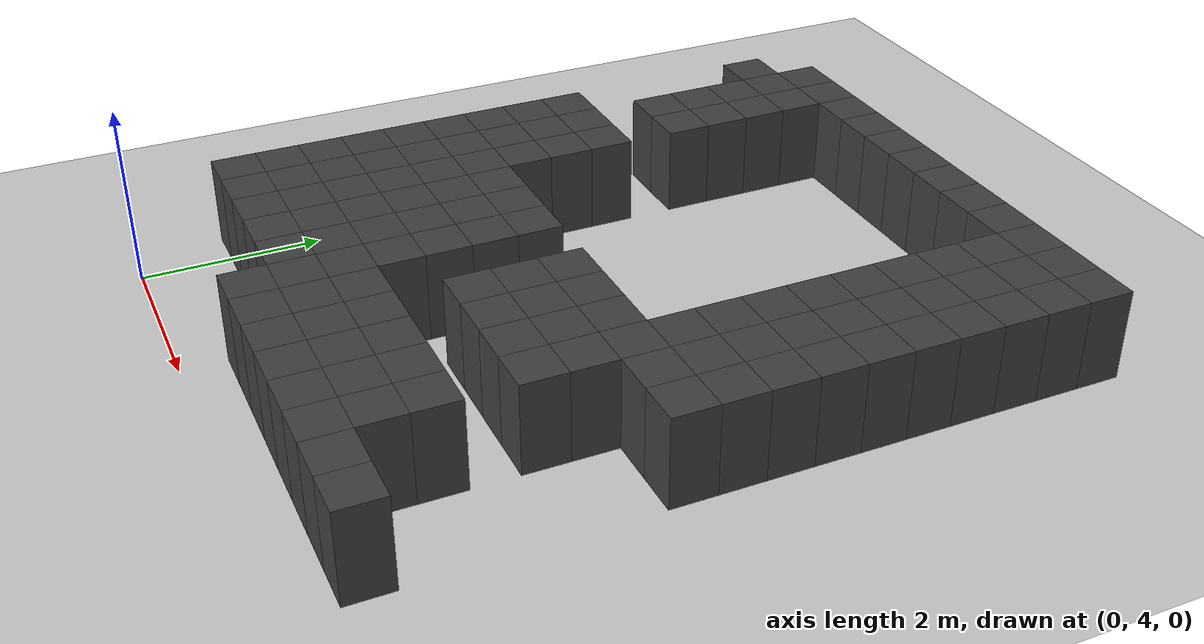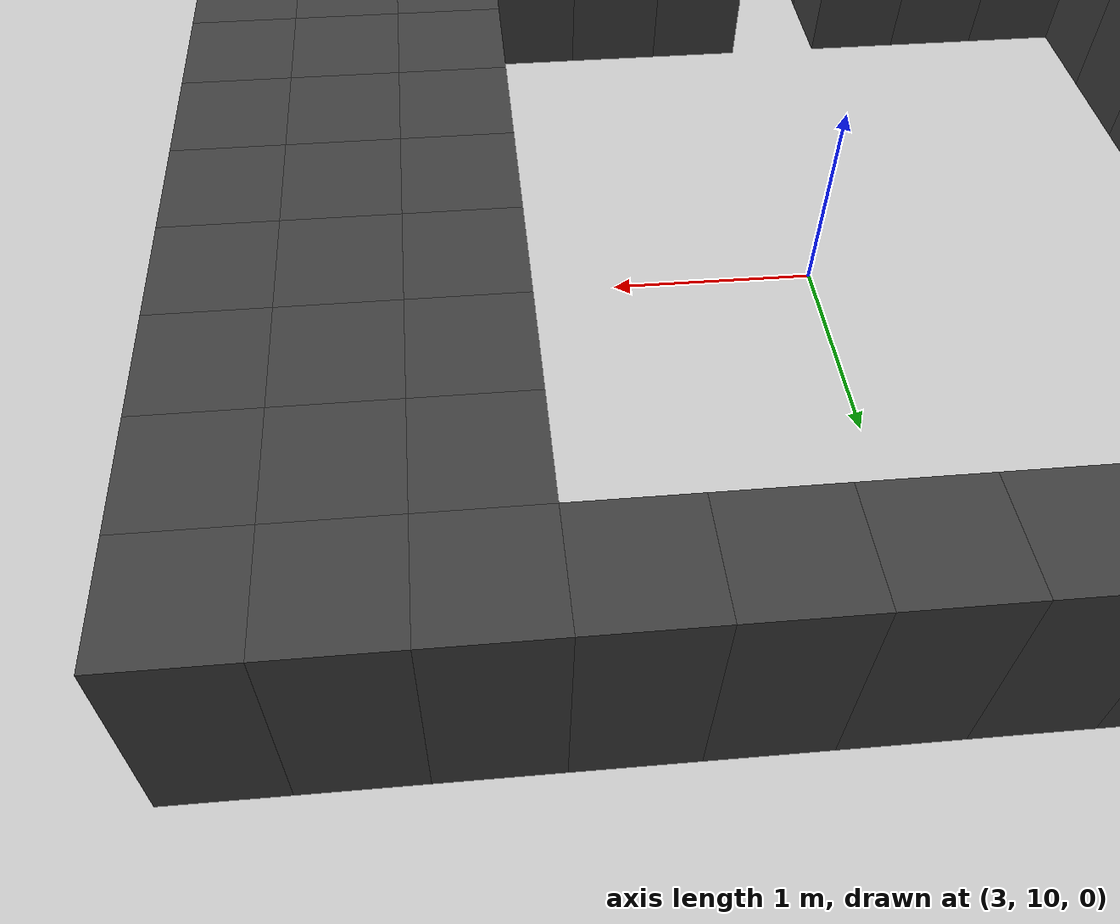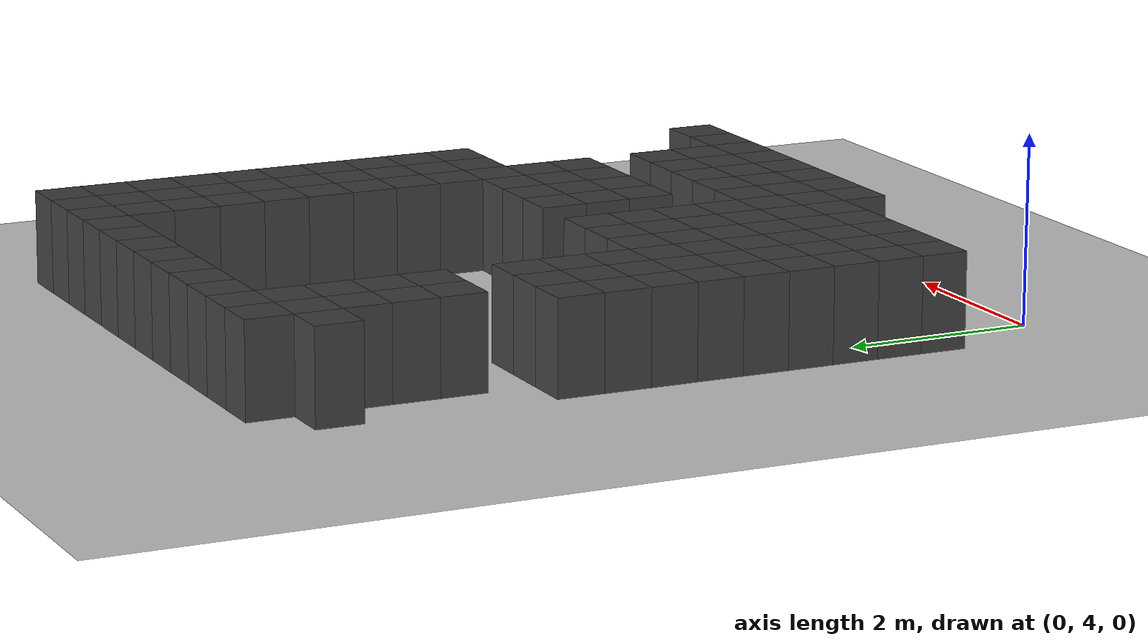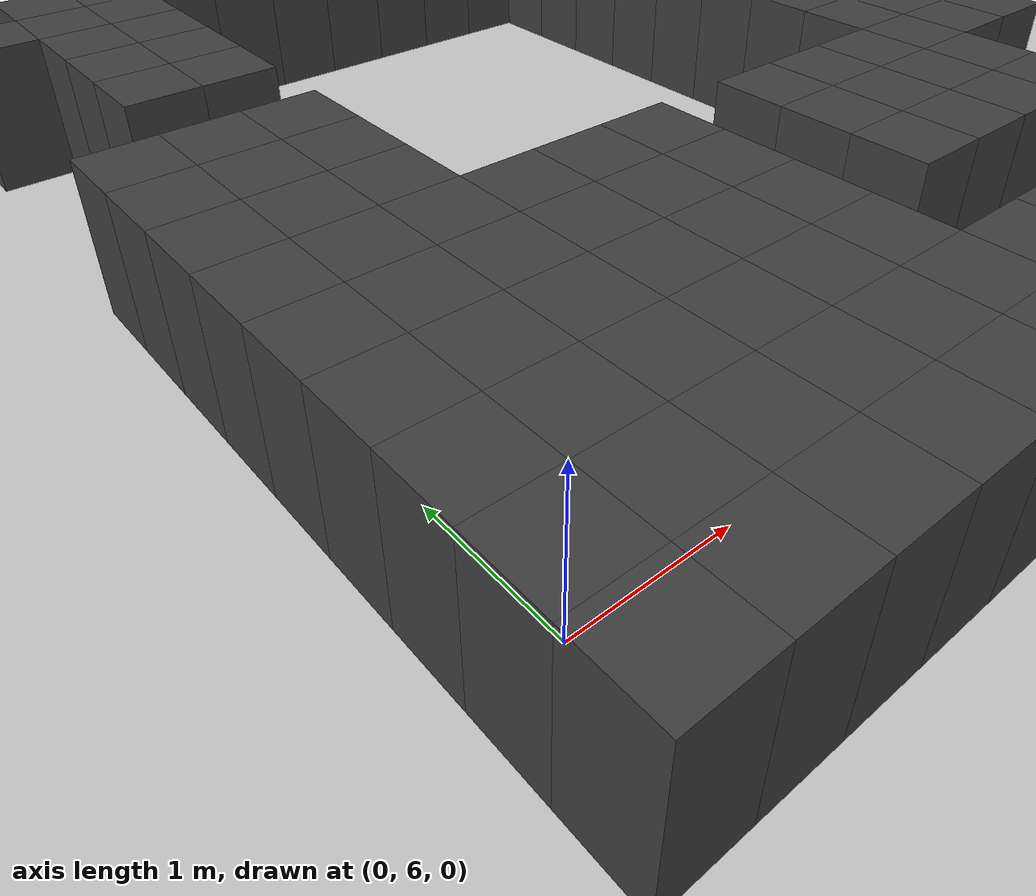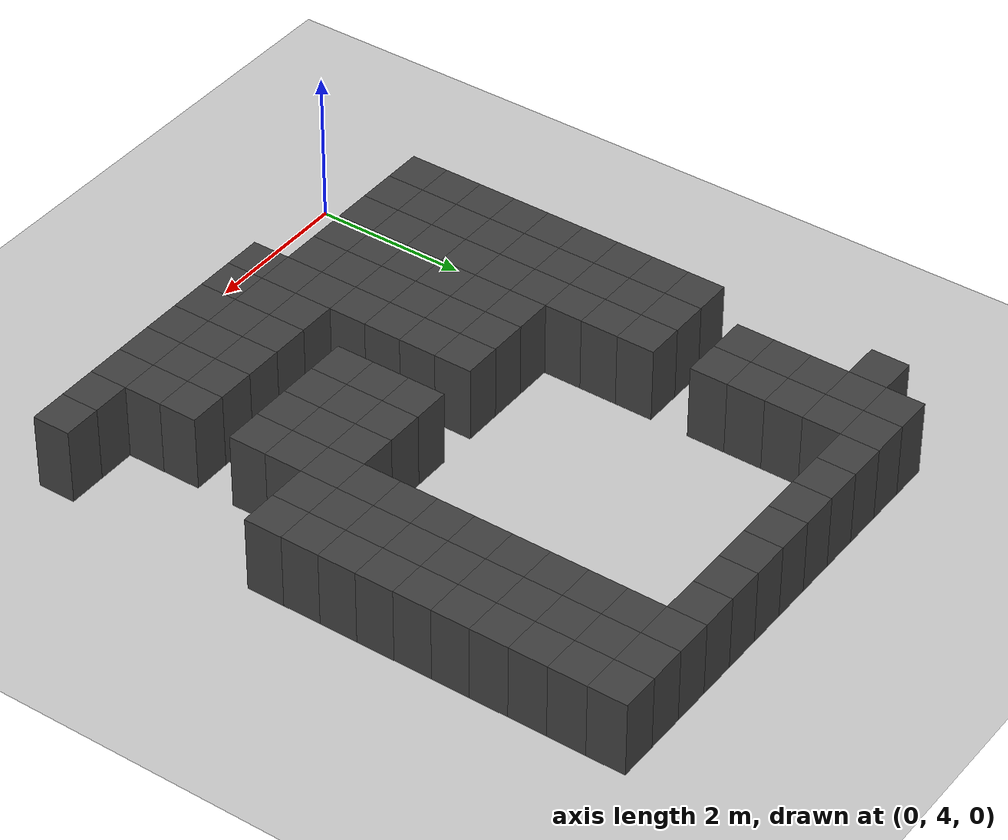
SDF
<sdf version="1.7">
 <world name="map_14547">
  <model name="ground_plane">
   <static>true</static>
   <link name="link">
    <collision name="collision">
     <geometry><plane><normal>0 0 1</normal><size>200 200</size></plane></geometry>
    </collision>
    <visual name="visual">
     <geometry><plane><normal>0 0 1</normal><size>200 200</size></plane></geometry>
     <material><ambient>0.8 0.8 0.8 1</ambient><diffuse>0.8 0.8 0.8 1</diffuse></material>
    </visual>
   </link>
  </model>
  <model name="maze_environment">
   <static>true</static>
   <link name="wall_25">
    <pose>0.250 12.250 0.500 0 0 0</pose>
    <collision name="col"><geometry><box><size>0.5 0.5 1.0</size></box></geometry></collision>
    <visual name="vis">
     <geometry><box><size>0.5 0.5 1.0</size></box></geometry>
     <material><ambient>0.15 0.15 0.15 1</ambient><diffuse>0.25 0.25 0.25 1</diffuse></material>
    </visual>
   </link>
   <link name="wall_26">
    <pose>0.750 12.250 0.500 0 0 0</pose>
    <collision name="col"><geometry><box><size>0.5 0.5 1.0</size></box></geometry></collision>
    <visual name="vis">
     <geometry><box><size>0.5 0.5 1.0</size></box></geometry>
     <material><ambient>0.15 0.15 0.15 1</ambient><diffuse>0.25 0.25 0.25 1</diffuse></material>
    </visual>
   </link>
   <link name="wall_27">
    <pose>1.250 12.250 0.500 0 0 0</pose>
    <collision name="col"><geometry><box><size>0.5 0.5 1.0</size></box></geometry></collision>
    <visual name="vis">
     <geometry><box><size>0.5 0.5 1.0</size></box></geometry>
     <material><ambient>0.15 0.15 0.15 1</ambient><diffuse>0.25 0.25 0.25 1</diffuse></material>
    </visual>
   </link>
   <link name="wall_28">
    <pose>1.750 12.250 0.500 0 0 0</pose>
    <collision name="col"><geometry><box><size>0.5 0.5 1.0</size></box></geometry></collision>
    <visual name="vis">
     <geometry><box><size>0.5 0.5 1.0</size></box></geometry>
     <material><ambient>0.15 0.15 0.15 1</ambient><diffuse>0.25 0.25 0.25 1</diffuse></material>
    </visual>
   </link>
   <link name="wall_29">
    <pose>2.250 12.250 0.500 0 0 0</pose>
    <collision name="col"><geometry><box><size>0.5 0.5 1.0</size></box></geometry></collision>
    <visual name="vis">
     <geometry><box><size>0.5 0.5 1.0</size></box></geometry>
     <material><ambient>0.15 0.15 0.15 1</ambient><diffuse>0.25 0.25 0.25 1</diffuse></material>
    </visual>
   </link>
   <link name="wall_30">
    <pose>2.750 12.250 0.500 0 0 0</pose>
    <collision name="col"><geometry><box><size>0.5 0.5 1.0</size></box></geometry></collision>
    <visual name="vis">
     <geometry><box><size>0.5 0.5 1.0</size></box></geometry>
     <material><ambient>0.15 0.15 0.15 1</ambient><diffuse>0.25 0.25 0.25 1</diffuse></material>
    </visual>
   </link>
   <link name="wall_31">
    <pose>3.250 12.250 0.500 0 0 0</pose>
    <collision name="col"><geometry><box><size>0.5 0.5 1.0</size></box></geometry></collision>
    <visual name="vis">
     <geometry><box><size>0.5 0.5 1.0</size></box></geometry>
     <material><ambient>0.15 0.15 0.15 1</ambient><diffuse>0.25 0.25 0.25 1</diffuse></material>
    </visual>
   </link>
   <link name="wall_32">
    <pose>3.750 12.250 0.500 0 0 0</pose>
    <collision name="col"><geometry><box><size>0.5 0.5 1.0</size></box></geometry></collision>
    <visual name="vis">
     <geometry><box><size>0.5 0.5 1.0</size></box></geometry>
     <material><ambient>0.15 0.15 0.15 1</ambient><diffuse>0.25 0.25 0.25 1</diffuse></material>
    </visual>
   </link>
   <link name="wall_33">
    <pose>4.250 12.250 0.500 0 0 0</pose>
    <collision name="col"><geometry><box><size>0.5 0.5 1.0</size></box></geometry></collision>
    <visual name="vis">
     <geometry><box><size>0.5 0.5 1.0</size></box></geometry>
     <material><ambient>0.15 0.15 0.15 1</ambient><diffuse>0.25 0.25 0.25 1</diffuse></material>
    </visual>
   </link>
   <link name="wall_34">
    <pose>4.750 12.250 0.500 0 0 0</pose>
    <collision name="col"><geometry><box><size>0.5 0.5 1.0</size></box></geometry></collision>
    <visual name="vis">
     <geometry><box><size>0.5 0.5 1.0</size></box></geometry>
     <material><ambient>0.15 0.15 0.15 1</ambient><diffuse>0.25 0.25 0.25 1</diffuse></material>
    </visual>
   </link>
   <link name="wall_35">
    <pose>5.250 12.250 0.500 0 0 0</pose>
    <collision name="col"><geometry><box><size>0.5 0.5 1.0</size></box></geometry></collision>
    <visual name="vis">
     <geometry><box><size>0.5 0.5 1.0</size></box></geometry>
     <material><ambient>0.15 0.15 0.15 1</ambient><diffuse>0.25 0.25 0.25 1</diffuse></material>
    </visual>
   </link>
   <link name="wall_36">
    <pose>5.750 12.250 0.500 0 0 0</pose>
    <collision name="col"><geometry><box><size>0.5 0.5 1.0</size></box></geometry></collision>
    <visual name="vis">
     <geometry><box><size>0.5 0.5 1.0</size></box></geometry>
     <material><ambient>0.15 0.15 0.15 1</ambient><diffuse>0.25 0.25 0.25 1</diffuse></material>
    </visual>
   </link>
   <link name="wall_71">
    <pose>-0.250 11.750 0.500 0 0 0</pose>
    <collision name="col"><geometry><box><size>0.5 0.5 1.0</size></box></geometry></collision>
    <visual name="vis">
     <geometry><box><size>0.5 0.5 1.0</size></box></geometry>
     <material><ambient>0.15 0.15 0.15 1</ambient><diffuse>0.25 0.25 0.25 1</diffuse></material>
    </visual>
   </link>
   <link name="wall_72">
    <pose>0.250 11.750 0.500 0 0 0</pose>
    <collision name="col"><geometry><box><size>0.5 0.5 1.0</size></box></geometry></collision>
    <visual name="vis">
     <geometry><box><size>0.5 0.5 1.0</size></box></geometry>
     <material><ambient>0.15 0.15 0.15 1</ambient><diffuse>0.25 0.25 0.25 1</diffuse></material>
    </visual>
   </link>
   <link name="wall_73">
    <pose>0.750 11.750 0.500 0 0 0</pose>
    <collision name="col"><geometry><box><size>0.5 0.5 1.0</size></box></geometry></collision>
    <visual name="vis">
     <geometry><box><size>0.5 0.5 1.0</size></box></geometry>
     <material><ambient>0.15 0.15 0.15 1</ambient><diffuse>0.25 0.25 0.25 1</diffuse></material>
    </visual>
   </link>
   <link name="wall_74">
    <pose>4.750 11.750 0.500 0 0 0</pose>
    <collision name="col"><geometry><box><size>0.5 0.5 1.0</size></box></geometry></collision>
    <visual name="vis">
     <geometry><box><size>0.5 0.5 1.0</size></box></geometry>
     <material><ambient>0.15 0.15 0.15 1</ambient><diffuse>0.25 0.25 0.25 1</diffuse></material>
    </visual>
   </link>
   <link name="wall_75">
    <pose>5.250 11.750 0.500 0 0 0</pose>
    <collision name="col"><geometry><box><size>0.5 0.5 1.0</size></box></geometry></collision>
    <visual name="vis">
     <geometry><box><size>0.5 0.5 1.0</size></box></geometry>
     <material><ambient>0.15 0.15 0.15 1</ambient><diffuse>0.25 0.25 0.25 1</diffuse></material>
    </visual>
   </link>
   <link name="wall_76">
    <pose>5.750 11.750 0.500 0 0 0</pose>
    <collision name="col"><geometry><box><size>0.5 0.5 1.0</size></box></geometry></collision>
    <visual name="vis">
     <geometry><box><size>0.5 0.5 1.0</size></box></geometry>
     <material><ambient>0.15 0.15 0.15 1</ambient><diffuse>0.25 0.25 0.25 1</diffuse></material>
    </visual>
   </link>
   <link name="wall_104">
    <pose>0.250 11.250 0.500 0 0 0</pose>
    <collision name="col"><geometry><box><size>0.5 0.5 1.0</size></box></geometry></collision>
    <visual name="vis">
     <geometry><box><size>0.5 0.5 1.0</size></box></geometry>
     <material><ambient>0.15 0.15 0.15 1</ambient><diffuse>0.25 0.25 0.25 1</diffuse></material>
    </visual>
   </link>
   <link name="wall_105">
    <pose>0.750 11.250 0.500 0 0 0</pose>
    <collision name="col"><geometry><box><size>0.5 0.5 1.0</size></box></geometry></collision>
    <visual name="vis">
     <geometry><box><size>0.5 0.5 1.0</size></box></geometry>
     <material><ambient>0.15 0.15 0.15 1</ambient><diffuse>0.25 0.25 0.25 1</diffuse></material>
    </visual>
   </link>
   <link name="wall_106">
    <pose>4.750 11.250 0.500 0 0 0</pose>
    <collision name="col"><geometry><box><size>0.5 0.5 1.0</size></box></geometry></collision>
    <visual name="vis">
     <geometry><box><size>0.5 0.5 1.0</size></box></geometry>
     <material><ambient>0.15 0.15 0.15 1</ambient><diffuse>0.25 0.25 0.25 1</diffuse></material>
    </visual>
   </link>
   <link name="wall_107">
    <pose>5.250 11.250 0.500 0 0 0</pose>
    <collision name="col"><geometry><box><size>0.5 0.5 1.0</size></box></geometry></collision>
    <visual name="vis">
     <geometry><box><size>0.5 0.5 1.0</size></box></geometry>
     <material><ambient>0.15 0.15 0.15 1</ambient><diffuse>0.25 0.25 0.25 1</diffuse></material>
    </visual>
   </link>
   <link name="wall_108">
    <pose>5.750 11.250 0.500 0 0 0</pose>
    <collision name="col"><geometry><box><size>0.5 0.5 1.0</size></box></geometry></collision>
    <visual name="vis">
     <geometry><box><size>0.5 0.5 1.0</size></box></geometry>
     <material><ambient>0.15 0.15 0.15 1</ambient><diffuse>0.25 0.25 0.25 1</diffuse></material>
    </visual>
   </link>
   <link name="wall_136">
    <pose>0.250 10.750 0.500 0 0 0</pose>
    <collision name="col"><geometry><box><size>0.5 0.5 1.0</size></box></geometry></collision>
    <visual name="vis">
     <geometry><box><size>0.5 0.5 1.0</size></box></geometry>
     <material><ambient>0.15 0.15 0.15 1</ambient><diffuse>0.25 0.25 0.25 1</diffuse></material>
    </visual>
   </link>
   <link name="wall_137">
    <pose>0.750 10.750 0.500 0 0 0</pose>
    <collision name="col"><geometry><box><size>0.5 0.5 1.0</size></box></geometry></collision>
    <visual name="vis">
     <geometry><box><size>0.5 0.5 1.0</size></box></geometry>
     <material><ambient>0.15 0.15 0.15 1</ambient><diffuse>0.25 0.25 0.25 1</diffuse></material>
    </visual>
   </link>
   <link name="wall_138">
    <pose>4.750 10.750 0.500 0 0 0</pose>
    <collision name="col"><geometry><box><size>0.5 0.5 1.0</size></box></geometry></collision>
    <visual name="vis">
     <geometry><box><size>0.5 0.5 1.0</size></box></geometry>
     <material><ambient>0.15 0.15 0.15 1</ambient><diffuse>0.25 0.25 0.25 1</diffuse></material>
    </visual>
   </link>
   <link name="wall_139">
    <pose>5.250 10.750 0.500 0 0 0</pose>
    <collision name="col"><geometry><box><size>0.5 0.5 1.0</size></box></geometry></collision>
    <visual name="vis">
     <geometry><box><size>0.5 0.5 1.0</size></box></geometry>
     <material><ambient>0.15 0.15 0.15 1</ambient><diffuse>0.25 0.25 0.25 1</diffuse></material>
    </visual>
   </link>
   <link name="wall_140">
    <pose>5.750 10.750 0.500 0 0 0</pose>
    <collision name="col"><geometry><box><size>0.5 0.5 1.0</size></box></geometry></collision>
    <visual name="vis">
     <geometry><box><size>0.5 0.5 1.0</size></box></geometry>
     <material><ambient>0.15 0.15 0.15 1</ambient><diffuse>0.25 0.25 0.25 1</diffuse></material>
    </visual>
   </link>
   <link name="wall_165">
    <pose>0.250 10.250 0.500 0 0 0</pose>
    <collision name="col"><geometry><box><size>0.5 0.5 1.0</size></box></geometry></collision>
    <visual name="vis">
     <geometry><box><size>0.5 0.5 1.0</size></box></geometry>
     <material><ambient>0.15 0.15 0.15 1</ambient><diffuse>0.25 0.25 0.25 1</diffuse></material>
    </visual>
   </link>
   <link name="wall_166">
    <pose>0.750 10.250 0.500 0 0 0</pose>
    <collision name="col"><geometry><box><size>0.5 0.5 1.0</size></box></geometry></collision>
    <visual name="vis">
     <geometry><box><size>0.5 0.5 1.0</size></box></geometry>
     <material><ambient>0.15 0.15 0.15 1</ambient><diffuse>0.25 0.25 0.25 1</diffuse></material>
    </visual>
   </link>
   <link name="wall_167">
    <pose>4.750 10.250 0.500 0 0 0</pose>
    <collision name="col"><geometry><box><size>0.5 0.5 1.0</size></box></geometry></collision>
    <visual name="vis">
     <geometry><box><size>0.5 0.5 1.0</size></box></geometry>
     <material><ambient>0.15 0.15 0.15 1</ambient><diffuse>0.25 0.25 0.25 1</diffuse></material>
    </visual>
   </link>
   <link name="wall_168">
    <pose>5.250 10.250 0.500 0 0 0</pose>
    <collision name="col"><geometry><box><size>0.5 0.5 1.0</size></box></geometry></collision>
    <visual name="vis">
     <geometry><box><size>0.5 0.5 1.0</size></box></geometry>
     <material><ambient>0.15 0.15 0.15 1</ambient><diffuse>0.25 0.25 0.25 1</diffuse></material>
    </visual>
   </link>
   <link name="wall_169">
    <pose>5.750 10.250 0.500 0 0 0</pose>
    <collision name="col"><geometry><box><size>0.5 0.5 1.0</size></box></geometry></collision>
    <visual name="vis">
     <geometry><box><size>0.5 0.5 1.0</size></box></geometry>
     <material><ambient>0.15 0.15 0.15 1</ambient><diffuse>0.25 0.25 0.25 1</diffuse></material>
    </visual>
   </link>
   <link name="wall_196">
    <pose>4.750 9.750 0.500 0 0 0</pose>
    <collision name="col"><geometry><box><size>0.5 0.5 1.0</size></box></geometry></collision>
    <visual name="vis">
     <geometry><box><size>0.5 0.5 1.0</size></box></geometry>
     <material><ambient>0.15 0.15 0.15 1</ambient><diffuse>0.25 0.25 0.25 1</diffuse></material>
    </visual>
   </link>
   <link name="wall_197">
    <pose>5.250 9.750 0.500 0 0 0</pose>
    <collision name="col"><geometry><box><size>0.5 0.5 1.0</size></box></geometry></collision>
    <visual name="vis">
     <geometry><box><size>0.5 0.5 1.0</size></box></geometry>
     <material><ambient>0.15 0.15 0.15 1</ambient><diffuse>0.25 0.25 0.25 1</diffuse></material>
    </visual>
   </link>
   <link name="wall_198">
    <pose>5.750 9.750 0.500 0 0 0</pose>
    <collision name="col"><geometry><box><size>0.5 0.5 1.0</size></box></geometry></collision>
    <visual name="vis">
     <geometry><box><size>0.5 0.5 1.0</size></box></geometry>
     <material><ambient>0.15 0.15 0.15 1</ambient><diffuse>0.25 0.25 0.25 1</diffuse></material>
    </visual>
   </link>
   <link name="wall_229">
    <pose>-0.250 9.250 0.500 0 0 0</pose>
    <collision name="col"><geometry><box><size>0.5 0.5 1.0</size></box></geometry></collision>
    <visual name="vis">
     <geometry><box><size>0.5 0.5 1.0</size></box></geometry>
     <material><ambient>0.15 0.15 0.15 1</ambient><diffuse>0.25 0.25 0.25 1</diffuse></material>
    </visual>
   </link>
   <link name="wall_230">
    <pose>0.250 9.250 0.500 0 0 0</pose>
    <collision name="col"><geometry><box><size>0.5 0.5 1.0</size></box></geometry></collision>
    <visual name="vis">
     <geometry><box><size>0.5 0.5 1.0</size></box></geometry>
     <material><ambient>0.15 0.15 0.15 1</ambient><diffuse>0.25 0.25 0.25 1</diffuse></material>
    </visual>
   </link>
   <link name="wall_231">
    <pose>0.750 9.250 0.500 0 0 0</pose>
    <collision name="col"><geometry><box><size>0.5 0.5 1.0</size></box></geometry></collision>
    <visual name="vis">
     <geometry><box><size>0.5 0.5 1.0</size></box></geometry>
     <material><ambient>0.15 0.15 0.15 1</ambient><diffuse>0.25 0.25 0.25 1</diffuse></material>
    </visual>
   </link>
   <link name="wall_232">
    <pose>4.750 9.250 0.500 0 0 0</pose>
    <collision name="col"><geometry><box><size>0.5 0.5 1.0</size></box></geometry></collision>
    <visual name="vis">
     <geometry><box><size>0.5 0.5 1.0</size></box></geometry>
     <material><ambient>0.15 0.15 0.15 1</ambient><diffuse>0.25 0.25 0.25 1</diffuse></material>
    </visual>
   </link>
   <link name="wall_233">
    <pose>5.250 9.250 0.500 0 0 0</pose>
    <collision name="col"><geometry><box><size>0.5 0.5 1.0</size></box></geometry></collision>
    <visual name="vis">
     <geometry><box><size>0.5 0.5 1.0</size></box></geometry>
     <material><ambient>0.15 0.15 0.15 1</ambient><diffuse>0.25 0.25 0.25 1</diffuse></material>
    </visual>
   </link>
   <link name="wall_234">
    <pose>5.750 9.250 0.500 0 0 0</pose>
    <collision name="col"><geometry><box><size>0.5 0.5 1.0</size></box></geometry></collision>
    <visual name="vis">
     <geometry><box><size>0.5 0.5 1.0</size></box></geometry>
     <material><ambient>0.15 0.15 0.15 1</ambient><diffuse>0.25 0.25 0.25 1</diffuse></material>
    </visual>
   </link>
   <link name="wall_259">
    <pose>-0.250 8.750 0.500 0 0 0</pose>
    <collision name="col"><geometry><box><size>0.5 0.5 1.0</size></box></geometry></collision>
    <visual name="vis">
     <geometry><box><size>0.5 0.5 1.0</size></box></geometry>
     <material><ambient>0.15 0.15 0.15 1</ambient><diffuse>0.25 0.25 0.25 1</diffuse></material>
    </visual>
   </link>
   <link name="wall_260">
    <pose>0.250 8.750 0.500 0 0 0</pose>
    <collision name="col"><geometry><box><size>0.5 0.5 1.0</size></box></geometry></collision>
    <visual name="vis">
     <geometry><box><size>0.5 0.5 1.0</size></box></geometry>
     <material><ambient>0.15 0.15 0.15 1</ambient><diffuse>0.25 0.25 0.25 1</diffuse></material>
    </visual>
   </link>
   <link name="wall_261">
    <pose>0.750 8.750 0.500 0 0 0</pose>
    <collision name="col"><geometry><box><size>0.5 0.5 1.0</size></box></geometry></collision>
    <visual name="vis">
     <geometry><box><size>0.5 0.5 1.0</size></box></geometry>
     <material><ambient>0.15 0.15 0.15 1</ambient><diffuse>0.25 0.25 0.25 1</diffuse></material>
    </visual>
   </link>
   <link name="wall_262">
    <pose>4.750 8.750 0.500 0 0 0</pose>
    <collision name="col"><geometry><box><size>0.5 0.5 1.0</size></box></geometry></collision>
    <visual name="vis">
     <geometry><box><size>0.5 0.5 1.0</size></box></geometry>
     <material><ambient>0.15 0.15 0.15 1</ambient><diffuse>0.25 0.25 0.25 1</diffuse></material>
    </visual>
   </link>
   <link name="wall_263">
    <pose>5.250 8.750 0.500 0 0 0</pose>
    <collision name="col"><geometry><box><size>0.5 0.5 1.0</size></box></geometry></collision>
    <visual name="vis">
     <geometry><box><size>0.5 0.5 1.0</size></box></geometry>
     <material><ambient>0.15 0.15 0.15 1</ambient><diffuse>0.25 0.25 0.25 1</diffuse></material>
    </visual>
   </link>
   <link name="wall_264">
    <pose>5.750 8.750 0.500 0 0 0</pose>
    <collision name="col"><geometry><box><size>0.5 0.5 1.0</size></box></geometry></collision>
    <visual name="vis">
     <geometry><box><size>0.5 0.5 1.0</size></box></geometry>
     <material><ambient>0.15 0.15 0.15 1</ambient><diffuse>0.25 0.25 0.25 1</diffuse></material>
    </visual>
   </link>
   <link name="wall_281">
    <pose>-0.250 8.250 0.500 0 0 0</pose>
    <collision name="col"><geometry><box><size>0.5 0.5 1.0</size></box></geometry></collision>
    <visual name="vis">
     <geometry><box><size>0.5 0.5 1.0</size></box></geometry>
     <material><ambient>0.15 0.15 0.15 1</ambient><diffuse>0.25 0.25 0.25 1</diffuse></material>
    </visual>
   </link>
   <link name="wall_282">
    <pose>0.250 8.250 0.500 0 0 0</pose>
    <collision name="col"><geometry><box><size>0.5 0.5 1.0</size></box></geometry></collision>
    <visual name="vis">
     <geometry><box><size>0.5 0.5 1.0</size></box></geometry>
     <material><ambient>0.15 0.15 0.15 1</ambient><diffuse>0.25 0.25 0.25 1</diffuse></material>
    </visual>
   </link>
   <link name="wall_283">
    <pose>0.750 8.250 0.500 0 0 0</pose>
    <collision name="col"><geometry><box><size>0.5 0.5 1.0</size></box></geometry></collision>
    <visual name="vis">
     <geometry><box><size>0.5 0.5 1.0</size></box></geometry>
     <material><ambient>0.15 0.15 0.15 1</ambient><diffuse>0.25 0.25 0.25 1</diffuse></material>
    </visual>
   </link>
   <link name="wall_284">
    <pose>4.750 8.250 0.500 0 0 0</pose>
    <collision name="col"><geometry><box><size>0.5 0.5 1.0</size></box></geometry></collision>
    <visual name="vis">
     <geometry><box><size>0.5 0.5 1.0</size></box></geometry>
     <material><ambient>0.15 0.15 0.15 1</ambient><diffuse>0.25 0.25 0.25 1</diffuse></material>
    </visual>
   </link>
   <link name="wall_285">
    <pose>5.250 8.250 0.500 0 0 0</pose>
    <collision name="col"><geometry><box><size>0.5 0.5 1.0</size></box></geometry></collision>
    <visual name="vis">
     <geometry><box><size>0.5 0.5 1.0</size></box></geometry>
     <material><ambient>0.15 0.15 0.15 1</ambient><diffuse>0.25 0.25 0.25 1</diffuse></material>
    </visual>
   </link>
   <link name="wall_286">
    <pose>5.750 8.250 0.500 0 0 0</pose>
    <collision name="col"><geometry><box><size>0.5 0.5 1.0</size></box></geometry></collision>
    <visual name="vis">
     <geometry><box><size>0.5 0.5 1.0</size></box></geometry>
     <material><ambient>0.15 0.15 0.15 1</ambient><diffuse>0.25 0.25 0.25 1</diffuse></material>
    </visual>
   </link>
   <link name="wall_300">
    <pose>-0.250 7.750 0.500 0 0 0</pose>
    <collision name="col"><geometry><box><size>0.5 0.5 1.0</size></box></geometry></collision>
    <visual name="vis">
     <geometry><box><size>0.5 0.5 1.0</size></box></geometry>
     <material><ambient>0.15 0.15 0.15 1</ambient><diffuse>0.25 0.25 0.25 1</diffuse></material>
    </visual>
   </link>
   <link name="wall_301">
    <pose>0.250 7.750 0.500 0 0 0</pose>
    <collision name="col"><geometry><box><size>0.5 0.5 1.0</size></box></geometry></collision>
    <visual name="vis">
     <geometry><box><size>0.5 0.5 1.0</size></box></geometry>
     <material><ambient>0.15 0.15 0.15 1</ambient><diffuse>0.25 0.25 0.25 1</diffuse></material>
    </visual>
   </link>
   <link name="wall_302">
    <pose>0.750 7.750 0.500 0 0 0</pose>
    <collision name="col"><geometry><box><size>0.5 0.5 1.0</size></box></geometry></collision>
    <visual name="vis">
     <geometry><box><size>0.5 0.5 1.0</size></box></geometry>
     <material><ambient>0.15 0.15 0.15 1</ambient><diffuse>0.25 0.25 0.25 1</diffuse></material>
    </visual>
   </link>
   <link name="wall_303">
    <pose>1.250 7.750 0.500 0 0 0</pose>
    <collision name="col"><geometry><box><size>0.5 0.5 1.0</size></box></geometry></collision>
    <visual name="vis">
     <geometry><box><size>0.5 0.5 1.0</size></box></geometry>
     <material><ambient>0.15 0.15 0.15 1</ambient><diffuse>0.25 0.25 0.25 1</diffuse></material>
    </visual>
   </link>
   <link name="wall_304">
    <pose>1.750 7.750 0.500 0 0 0</pose>
    <collision name="col"><geometry><box><size>0.5 0.5 1.0</size></box></geometry></collision>
    <visual name="vis">
     <geometry><box><size>0.5 0.5 1.0</size></box></geometry>
     <material><ambient>0.15 0.15 0.15 1</ambient><diffuse>0.25 0.25 0.25 1</diffuse></material>
    </visual>
   </link>
   <link name="wall_305">
    <pose>2.250 7.750 0.500 0 0 0</pose>
    <collision name="col"><geometry><box><size>0.5 0.5 1.0</size></box></geometry></collision>
    <visual name="vis">
     <geometry><box><size>0.5 0.5 1.0</size></box></geometry>
     <material><ambient>0.15 0.15 0.15 1</ambient><diffuse>0.25 0.25 0.25 1</diffuse></material>
    </visual>
   </link>
   <link name="wall_306">
    <pose>3.250 7.750 0.500 0 0 0</pose>
    <collision name="col"><geometry><box><size>0.5 0.5 1.0</size></box></geometry></collision>
    <visual name="vis">
     <geometry><box><size>0.5 0.5 1.0</size></box></geometry>
     <material><ambient>0.15 0.15 0.15 1</ambient><diffuse>0.25 0.25 0.25 1</diffuse></material>
    </visual>
   </link>
   <link name="wall_307">
    <pose>3.750 7.750 0.500 0 0 0</pose>
    <collision name="col"><geometry><box><size>0.5 0.5 1.0</size></box></geometry></collision>
    <visual name="vis">
     <geometry><box><size>0.5 0.5 1.0</size></box></geometry>
     <material><ambient>0.15 0.15 0.15 1</ambient><diffuse>0.25 0.25 0.25 1</diffuse></material>
    </visual>
   </link>
   <link name="wall_308">
    <pose>4.250 7.750 0.500 0 0 0</pose>
    <collision name="col"><geometry><box><size>0.5 0.5 1.0</size></box></geometry></collision>
    <visual name="vis">
     <geometry><box><size>0.5 0.5 1.0</size></box></geometry>
     <material><ambient>0.15 0.15 0.15 1</ambient><diffuse>0.25 0.25 0.25 1</diffuse></material>
    </visual>
   </link>
   <link name="wall_309">
    <pose>4.750 7.750 0.500 0 0 0</pose>
    <collision name="col"><geometry><box><size>0.5 0.5 1.0</size></box></geometry></collision>
    <visual name="vis">
     <geometry><box><size>0.5 0.5 1.0</size></box></geometry>
     <material><ambient>0.15 0.15 0.15 1</ambient><diffuse>0.25 0.25 0.25 1</diffuse></material>
    </visual>
   </link>
   <link name="wall_310">
    <pose>5.250 7.750 0.500 0 0 0</pose>
    <collision name="col"><geometry><box><size>0.5 0.5 1.0</size></box></geometry></collision>
    <visual name="vis">
     <geometry><box><size>0.5 0.5 1.0</size></box></geometry>
     <material><ambient>0.15 0.15 0.15 1</ambient><diffuse>0.25 0.25 0.25 1</diffuse></material>
    </visual>
   </link>
   <link name="wall_311">
    <pose>5.750 7.750 0.500 0 0 0</pose>
    <collision name="col"><geometry><box><size>0.5 0.5 1.0</size></box></geometry></collision>
    <visual name="vis">
     <geometry><box><size>0.5 0.5 1.0</size></box></geometry>
     <material><ambient>0.15 0.15 0.15 1</ambient><diffuse>0.25 0.25 0.25 1</diffuse></material>
    </visual>
   </link>
   <link name="wall_328">
    <pose>-0.250 7.250 0.500 0 0 0</pose>
    <collision name="col"><geometry><box><size>0.5 0.5 1.0</size></box></geometry></collision>
    <visual name="vis">
     <geometry><box><size>0.5 0.5 1.0</size></box></geometry>
     <material><ambient>0.15 0.15 0.15 1</ambient><diffuse>0.25 0.25 0.25 1</diffuse></material>
    </visual>
   </link>
   <link name="wall_329">
    <pose>0.250 7.250 0.500 0 0 0</pose>
    <collision name="col"><geometry><box><size>0.5 0.5 1.0</size></box></geometry></collision>
    <visual name="vis">
     <geometry><box><size>0.5 0.5 1.0</size></box></geometry>
     <material><ambient>0.15 0.15 0.15 1</ambient><diffuse>0.25 0.25 0.25 1</diffuse></material>
    </visual>
   </link>
   <link name="wall_330">
    <pose>0.750 7.250 0.500 0 0 0</pose>
    <collision name="col"><geometry><box><size>0.5 0.5 1.0</size></box></geometry></collision>
    <visual name="vis">
     <geometry><box><size>0.5 0.5 1.0</size></box></geometry>
     <material><ambient>0.15 0.15 0.15 1</ambient><diffuse>0.25 0.25 0.25 1</diffuse></material>
    </visual>
   </link>
   <link name="wall_331">
    <pose>1.250 7.250 0.500 0 0 0</pose>
    <collision name="col"><geometry><box><size>0.5 0.5 1.0</size></box></geometry></collision>
    <visual name="vis">
     <geometry><box><size>0.5 0.5 1.0</size></box></geometry>
     <material><ambient>0.15 0.15 0.15 1</ambient><diffuse>0.25 0.25 0.25 1</diffuse></material>
    </visual>
   </link>
   <link name="wall_332">
    <pose>1.750 7.250 0.500 0 0 0</pose>
    <collision name="col"><geometry><box><size>0.5 0.5 1.0</size></box></geometry></collision>
    <visual name="vis">
     <geometry><box><size>0.5 0.5 1.0</size></box></geometry>
     <material><ambient>0.15 0.15 0.15 1</ambient><diffuse>0.25 0.25 0.25 1</diffuse></material>
    </visual>
   </link>
   <link name="wall_333">
    <pose>2.250 7.250 0.500 0 0 0</pose>
    <collision name="col"><geometry><box><size>0.5 0.5 1.0</size></box></geometry></collision>
    <visual name="vis">
     <geometry><box><size>0.5 0.5 1.0</size></box></geometry>
     <material><ambient>0.15 0.15 0.15 1</ambient><diffuse>0.25 0.25 0.25 1</diffuse></material>
    </visual>
   </link>
   <link name="wall_334">
    <pose>3.250 7.250 0.500 0 0 0</pose>
    <collision name="col"><geometry><box><size>0.5 0.5 1.0</size></box></geometry></collision>
    <visual name="vis">
     <geometry><box><size>0.5 0.5 1.0</size></box></geometry>
     <material><ambient>0.15 0.15 0.15 1</ambient><diffuse>0.25 0.25 0.25 1</diffuse></material>
    </visual>
   </link>
   <link name="wall_335">
    <pose>3.750 7.250 0.500 0 0 0</pose>
    <collision name="col"><geometry><box><size>0.5 0.5 1.0</size></box></geometry></collision>
    <visual name="vis">
     <geometry><box><size>0.5 0.5 1.0</size></box></geometry>
     <material><ambient>0.15 0.15 0.15 1</ambient><diffuse>0.25 0.25 0.25 1</diffuse></material>
    </visual>
   </link>
   <link name="wall_336">
    <pose>4.250 7.250 0.500 0 0 0</pose>
    <collision name="col"><geometry><box><size>0.5 0.5 1.0</size></box></geometry></collision>
    <visual name="vis">
     <geometry><box><size>0.5 0.5 1.0</size></box></geometry>
     <material><ambient>0.15 0.15 0.15 1</ambient><diffuse>0.25 0.25 0.25 1</diffuse></material>
    </visual>
   </link>
   <link name="wall_337">
    <pose>4.750 7.250 0.500 0 0 0</pose>
    <collision name="col"><geometry><box><size>0.5 0.5 1.0</size></box></geometry></collision>
    <visual name="vis">
     <geometry><box><size>0.5 0.5 1.0</size></box></geometry>
     <material><ambient>0.15 0.15 0.15 1</ambient><diffuse>0.25 0.25 0.25 1</diffuse></material>
    </visual>
   </link>
   <link name="wall_352">
    <pose>-0.250 6.750 0.500 0 0 0</pose>
    <collision name="col"><geometry><box><size>0.5 0.5 1.0</size></box></geometry></collision>
    <visual name="vis">
     <geometry><box><size>0.5 0.5 1.0</size></box></geometry>
     <material><ambient>0.15 0.15 0.15 1</ambient><diffuse>0.25 0.25 0.25 1</diffuse></material>
    </visual>
   </link>
   <link name="wall_353">
    <pose>0.250 6.750 0.500 0 0 0</pose>
    <collision name="col"><geometry><box><size>0.5 0.5 1.0</size></box></geometry></collision>
    <visual name="vis">
     <geometry><box><size>0.5 0.5 1.0</size></box></geometry>
     <material><ambient>0.15 0.15 0.15 1</ambient><diffuse>0.25 0.25 0.25 1</diffuse></material>
    </visual>
   </link>
   <link name="wall_354">
    <pose>0.750 6.750 0.500 0 0 0</pose>
    <collision name="col"><geometry><box><size>0.5 0.5 1.0</size></box></geometry></collision>
    <visual name="vis">
     <geometry><box><size>0.5 0.5 1.0</size></box></geometry>
     <material><ambient>0.15 0.15 0.15 1</ambient><diffuse>0.25 0.25 0.25 1</diffuse></material>
    </visual>
   </link>
   <link name="wall_355">
    <pose>1.250 6.750 0.500 0 0 0</pose>
    <collision name="col"><geometry><box><size>0.5 0.5 1.0</size></box></geometry></collision>
    <visual name="vis">
     <geometry><box><size>0.5 0.5 1.0</size></box></geometry>
     <material><ambient>0.15 0.15 0.15 1</ambient><diffuse>0.25 0.25 0.25 1</diffuse></material>
    </visual>
   </link>
   <link name="wall_356">
    <pose>1.750 6.750 0.500 0 0 0</pose>
    <collision name="col"><geometry><box><size>0.5 0.5 1.0</size></box></geometry></collision>
    <visual name="vis">
     <geometry><box><size>0.5 0.5 1.0</size></box></geometry>
     <material><ambient>0.15 0.15 0.15 1</ambient><diffuse>0.25 0.25 0.25 1</diffuse></material>
    </visual>
   </link>
   <link name="wall_357">
    <pose>2.250 6.750 0.500 0 0 0</pose>
    <collision name="col"><geometry><box><size>0.5 0.5 1.0</size></box></geometry></collision>
    <visual name="vis">
     <geometry><box><size>0.5 0.5 1.0</size></box></geometry>
     <material><ambient>0.15 0.15 0.15 1</ambient><diffuse>0.25 0.25 0.25 1</diffuse></material>
    </visual>
   </link>
   <link name="wall_358">
    <pose>3.250 6.750 0.500 0 0 0</pose>
    <collision name="col"><geometry><box><size>0.5 0.5 1.0</size></box></geometry></collision>
    <visual name="vis">
     <geometry><box><size>0.5 0.5 1.0</size></box></geometry>
     <material><ambient>0.15 0.15 0.15 1</ambient><diffuse>0.25 0.25 0.25 1</diffuse></material>
    </visual>
   </link>
   <link name="wall_359">
    <pose>3.750 6.750 0.500 0 0 0</pose>
    <collision name="col"><geometry><box><size>0.5 0.5 1.0</size></box></geometry></collision>
    <visual name="vis">
     <geometry><box><size>0.5 0.5 1.0</size></box></geometry>
     <material><ambient>0.15 0.15 0.15 1</ambient><diffuse>0.25 0.25 0.25 1</diffuse></material>
    </visual>
   </link>
   <link name="wall_360">
    <pose>4.250 6.750 0.500 0 0 0</pose>
    <collision name="col"><geometry><box><size>0.5 0.5 1.0</size></box></geometry></collision>
    <visual name="vis">
     <geometry><box><size>0.5 0.5 1.0</size></box></geometry>
     <material><ambient>0.15 0.15 0.15 1</ambient><diffuse>0.25 0.25 0.25 1</diffuse></material>
    </visual>
   </link>
   <link name="wall_361">
    <pose>4.750 6.750 0.500 0 0 0</pose>
    <collision name="col"><geometry><box><size>0.5 0.5 1.0</size></box></geometry></collision>
    <visual name="vis">
     <geometry><box><size>0.5 0.5 1.0</size></box></geometry>
     <material><ambient>0.15 0.15 0.15 1</ambient><diffuse>0.25 0.25 0.25 1</diffuse></material>
    </visual>
   </link>
   <link name="wall_380">
    <pose>-0.250 6.250 0.500 0 0 0</pose>
    <collision name="col"><geometry><box><size>0.5 0.5 1.0</size></box></geometry></collision>
    <visual name="vis">
     <geometry><box><size>0.5 0.5 1.0</size></box></geometry>
     <material><ambient>0.15 0.15 0.15 1</ambient><diffuse>0.25 0.25 0.25 1</diffuse></material>
    </visual>
   </link>
   <link name="wall_381">
    <pose>0.250 6.250 0.500 0 0 0</pose>
    <collision name="col"><geometry><box><size>0.5 0.5 1.0</size></box></geometry></collision>
    <visual name="vis">
     <geometry><box><size>0.5 0.5 1.0</size></box></geometry>
     <material><ambient>0.15 0.15 0.15 1</ambient><diffuse>0.25 0.25 0.25 1</diffuse></material>
    </visual>
   </link>
   <link name="wall_382">
    <pose>0.750 6.250 0.500 0 0 0</pose>
    <collision name="col"><geometry><box><size>0.5 0.5 1.0</size></box></geometry></collision>
    <visual name="vis">
     <geometry><box><size>0.5 0.5 1.0</size></box></geometry>
     <material><ambient>0.15 0.15 0.15 1</ambient><diffuse>0.25 0.25 0.25 1</diffuse></material>
    </visual>
   </link>
   <link name="wall_383">
    <pose>1.250 6.250 0.500 0 0 0</pose>
    <collision name="col"><geometry><box><size>0.5 0.5 1.0</size></box></geometry></collision>
    <visual name="vis">
     <geometry><box><size>0.5 0.5 1.0</size></box></geometry>
     <material><ambient>0.15 0.15 0.15 1</ambient><diffuse>0.25 0.25 0.25 1</diffuse></material>
    </visual>
   </link>
   <link name="wall_384">
    <pose>1.750 6.250 0.500 0 0 0</pose>
    <collision name="col"><geometry><box><size>0.5 0.5 1.0</size></box></geometry></collision>
    <visual name="vis">
     <geometry><box><size>0.5 0.5 1.0</size></box></geometry>
     <material><ambient>0.15 0.15 0.15 1</ambient><diffuse>0.25 0.25 0.25 1</diffuse></material>
    </visual>
   </link>
   <link name="wall_385">
    <pose>2.250 6.250 0.500 0 0 0</pose>
    <collision name="col"><geometry><box><size>0.5 0.5 1.0</size></box></geometry></collision>
    <visual name="vis">
     <geometry><box><size>0.5 0.5 1.0</size></box></geometry>
     <material><ambient>0.15 0.15 0.15 1</ambient><diffuse>0.25 0.25 0.25 1</diffuse></material>
    </visual>
   </link>
   <link name="wall_404">
    <pose>-0.250 5.750 0.500 0 0 0</pose>
    <collision name="col"><geometry><box><size>0.5 0.5 1.0</size></box></geometry></collision>
    <visual name="vis">
     <geometry><box><size>0.5 0.5 1.0</size></box></geometry>
     <material><ambient>0.15 0.15 0.15 1</ambient><diffuse>0.25 0.25 0.25 1</diffuse></material>
    </visual>
   </link>
   <link name="wall_405">
    <pose>0.250 5.750 0.500 0 0 0</pose>
    <collision name="col"><geometry><box><size>0.5 0.5 1.0</size></box></geometry></collision>
    <visual name="vis">
     <geometry><box><size>0.5 0.5 1.0</size></box></geometry>
     <material><ambient>0.15 0.15 0.15 1</ambient><diffuse>0.25 0.25 0.25 1</diffuse></material>
    </visual>
   </link>
   <link name="wall_406">
    <pose>0.750 5.750 0.500 0 0 0</pose>
    <collision name="col"><geometry><box><size>0.5 0.5 1.0</size></box></geometry></collision>
    <visual name="vis">
     <geometry><box><size>0.5 0.5 1.0</size></box></geometry>
     <material><ambient>0.15 0.15 0.15 1</ambient><diffuse>0.25 0.25 0.25 1</diffuse></material>
    </visual>
   </link>
   <link name="wall_407">
    <pose>1.250 5.750 0.500 0 0 0</pose>
    <collision name="col"><geometry><box><size>0.5 0.5 1.0</size></box></geometry></collision>
    <visual name="vis">
     <geometry><box><size>0.5 0.5 1.0</size></box></geometry>
     <material><ambient>0.15 0.15 0.15 1</ambient><diffuse>0.25 0.25 0.25 1</diffuse></material>
    </visual>
   </link>
   <link name="wall_408">
    <pose>1.750 5.750 0.500 0 0 0</pose>
    <collision name="col"><geometry><box><size>0.5 0.5 1.0</size></box></geometry></collision>
    <visual name="vis">
     <geometry><box><size>0.5 0.5 1.0</size></box></geometry>
     <material><ambient>0.15 0.15 0.15 1</ambient><diffuse>0.25 0.25 0.25 1</diffuse></material>
    </visual>
   </link>
   <link name="wall_409">
    <pose>2.250 5.750 0.500 0 0 0</pose>
    <collision name="col"><geometry><box><size>0.5 0.5 1.0</size></box></geometry></collision>
    <visual name="vis">
     <geometry><box><size>0.5 0.5 1.0</size></box></geometry>
     <material><ambient>0.15 0.15 0.15 1</ambient><diffuse>0.25 0.25 0.25 1</diffuse></material>
    </visual>
   </link>
   <link name="wall_410">
    <pose>2.750 5.750 0.500 0 0 0</pose>
    <collision name="col"><geometry><box><size>0.5 0.5 1.0</size></box></geometry></collision>
    <visual name="vis">
     <geometry><box><size>0.5 0.5 1.0</size></box></geometry>
     <material><ambient>0.15 0.15 0.15 1</ambient><diffuse>0.25 0.25 0.25 1</diffuse></material>
    </visual>
   </link>
   <link name="wall_411">
    <pose>3.250 5.750 0.500 0 0 0</pose>
    <collision name="col"><geometry><box><size>0.5 0.5 1.0</size></box></geometry></collision>
    <visual name="vis">
     <geometry><box><size>0.5 0.5 1.0</size></box></geometry>
     <material><ambient>0.15 0.15 0.15 1</ambient><diffuse>0.25 0.25 0.25 1</diffuse></material>
    </visual>
   </link>
   <link name="wall_412">
    <pose>3.750 5.750 0.500 0 0 0</pose>
    <collision name="col"><geometry><box><size>0.5 0.5 1.0</size></box></geometry></collision>
    <visual name="vis">
     <geometry><box><size>0.5 0.5 1.0</size></box></geometry>
     <material><ambient>0.15 0.15 0.15 1</ambient><diffuse>0.25 0.25 0.25 1</diffuse></material>
    </visual>
   </link>
   <link name="wall_413">
    <pose>4.250 5.750 0.500 0 0 0</pose>
    <collision name="col"><geometry><box><size>0.5 0.5 1.0</size></box></geometry></collision>
    <visual name="vis">
     <geometry><box><size>0.5 0.5 1.0</size></box></geometry>
     <material><ambient>0.15 0.15 0.15 1</ambient><diffuse>0.25 0.25 0.25 1</diffuse></material>
    </visual>
   </link>
   <link name="wall_414">
    <pose>4.750 5.750 0.500 0 0 0</pose>
    <collision name="col"><geometry><box><size>0.5 0.5 1.0</size></box></geometry></collision>
    <visual name="vis">
     <geometry><box><size>0.5 0.5 1.0</size></box></geometry>
     <material><ambient>0.15 0.15 0.15 1</ambient><diffuse>0.25 0.25 0.25 1</diffuse></material>
    </visual>
   </link>
   <link name="wall_432">
    <pose>-0.250 5.250 0.500 0 0 0</pose>
    <collision name="col"><geometry><box><size>0.5 0.5 1.0</size></box></geometry></collision>
    <visual name="vis">
     <geometry><box><size>0.5 0.5 1.0</size></box></geometry>
     <material><ambient>0.15 0.15 0.15 1</ambient><diffuse>0.25 0.25 0.25 1</diffuse></material>
    </visual>
   </link>
   <link name="wall_433">
    <pose>0.250 5.250 0.500 0 0 0</pose>
    <collision name="col"><geometry><box><size>0.5 0.5 1.0</size></box></geometry></collision>
    <visual name="vis">
     <geometry><box><size>0.5 0.5 1.0</size></box></geometry>
     <material><ambient>0.15 0.15 0.15 1</ambient><diffuse>0.25 0.25 0.25 1</diffuse></material>
    </visual>
   </link>
   <link name="wall_434">
    <pose>0.750 5.250 0.500 0 0 0</pose>
    <collision name="col"><geometry><box><size>0.5 0.5 1.0</size></box></geometry></collision>
    <visual name="vis">
     <geometry><box><size>0.5 0.5 1.0</size></box></geometry>
     <material><ambient>0.15 0.15 0.15 1</ambient><diffuse>0.25 0.25 0.25 1</diffuse></material>
    </visual>
   </link>
   <link name="wall_435">
    <pose>1.250 5.250 0.500 0 0 0</pose>
    <collision name="col"><geometry><box><size>0.5 0.5 1.0</size></box></geometry></collision>
    <visual name="vis">
     <geometry><box><size>0.5 0.5 1.0</size></box></geometry>
     <material><ambient>0.15 0.15 0.15 1</ambient><diffuse>0.25 0.25 0.25 1</diffuse></material>
    </visual>
   </link>
   <link name="wall_436">
    <pose>1.750 5.250 0.500 0 0 0</pose>
    <collision name="col"><geometry><box><size>0.5 0.5 1.0</size></box></geometry></collision>
    <visual name="vis">
     <geometry><box><size>0.5 0.5 1.0</size></box></geometry>
     <material><ambient>0.15 0.15 0.15 1</ambient><diffuse>0.25 0.25 0.25 1</diffuse></material>
    </visual>
   </link>
   <link name="wall_437">
    <pose>2.250 5.250 0.500 0 0 0</pose>
    <collision name="col"><geometry><box><size>0.5 0.5 1.0</size></box></geometry></collision>
    <visual name="vis">
     <geometry><box><size>0.5 0.5 1.0</size></box></geometry>
     <material><ambient>0.15 0.15 0.15 1</ambient><diffuse>0.25 0.25 0.25 1</diffuse></material>
    </visual>
   </link>
   <link name="wall_438">
    <pose>2.750 5.250 0.500 0 0 0</pose>
    <collision name="col"><geometry><box><size>0.5 0.5 1.0</size></box></geometry></collision>
    <visual name="vis">
     <geometry><box><size>0.5 0.5 1.0</size></box></geometry>
     <material><ambient>0.15 0.15 0.15 1</ambient><diffuse>0.25 0.25 0.25 1</diffuse></material>
    </visual>
   </link>
   <link name="wall_439">
    <pose>3.250 5.250 0.500 0 0 0</pose>
    <collision name="col"><geometry><box><size>0.5 0.5 1.0</size></box></geometry></collision>
    <visual name="vis">
     <geometry><box><size>0.5 0.5 1.0</size></box></geometry>
     <material><ambient>0.15 0.15 0.15 1</ambient><diffuse>0.25 0.25 0.25 1</diffuse></material>
    </visual>
   </link>
   <link name="wall_440">
    <pose>3.750 5.250 0.500 0 0 0</pose>
    <collision name="col"><geometry><box><size>0.5 0.5 1.0</size></box></geometry></collision>
    <visual name="vis">
     <geometry><box><size>0.5 0.5 1.0</size></box></geometry>
     <material><ambient>0.15 0.15 0.15 1</ambient><diffuse>0.25 0.25 0.25 1</diffuse></material>
    </visual>
   </link>
   <link name="wall_441">
    <pose>4.250 5.250 0.500 0 0 0</pose>
    <collision name="col"><geometry><box><size>0.5 0.5 1.0</size></box></geometry></collision>
    <visual name="vis">
     <geometry><box><size>0.5 0.5 1.0</size></box></geometry>
     <material><ambient>0.15 0.15 0.15 1</ambient><diffuse>0.25 0.25 0.25 1</diffuse></material>
    </visual>
   </link>
   <link name="wall_442">
    <pose>4.750 5.250 0.500 0 0 0</pose>
    <collision name="col"><geometry><box><size>0.5 0.5 1.0</size></box></geometry></collision>
    <visual name="vis">
     <geometry><box><size>0.5 0.5 1.0</size></box></geometry>
     <material><ambient>0.15 0.15 0.15 1</ambient><diffuse>0.25 0.25 0.25 1</diffuse></material>
    </visual>
   </link>
   <link name="wall_467">
    <pose>2.250 4.750 0.500 0 0 0</pose>
    <collision name="col"><geometry><box><size>0.5 0.5 1.0</size></box></geometry></collision>
    <visual name="vis">
     <geometry><box><size>0.5 0.5 1.0</size></box></geometry>
     <material><ambient>0.15 0.15 0.15 1</ambient><diffuse>0.25 0.25 0.25 1</diffuse></material>
    </visual>
   </link>
   <link name="wall_468">
    <pose>2.750 4.750 0.500 0 0 0</pose>
    <collision name="col"><geometry><box><size>0.5 0.5 1.0</size></box></geometry></collision>
    <visual name="vis">
     <geometry><box><size>0.5 0.5 1.0</size></box></geometry>
     <material><ambient>0.15 0.15 0.15 1</ambient><diffuse>0.25 0.25 0.25 1</diffuse></material>
    </visual>
   </link>
   <link name="wall_469">
    <pose>3.250 4.750 0.500 0 0 0</pose>
    <collision name="col"><geometry><box><size>0.5 0.5 1.0</size></box></geometry></collision>
    <visual name="vis">
     <geometry><box><size>0.5 0.5 1.0</size></box></geometry>
     <material><ambient>0.15 0.15 0.15 1</ambient><diffuse>0.25 0.25 0.25 1</diffuse></material>
    </visual>
   </link>
   <link name="wall_470">
    <pose>3.750 4.750 0.500 0 0 0</pose>
    <collision name="col"><geometry><box><size>0.5 0.5 1.0</size></box></geometry></collision>
    <visual name="vis">
     <geometry><box><size>0.5 0.5 1.0</size></box></geometry>
     <material><ambient>0.15 0.15 0.15 1</ambient><diffuse>0.25 0.25 0.25 1</diffuse></material>
    </visual>
   </link>
   <link name="wall_471">
    <pose>4.250 4.750 0.500 0 0 0</pose>
    <collision name="col"><geometry><box><size>0.5 0.5 1.0</size></box></geometry></collision>
    <visual name="vis">
     <geometry><box><size>0.5 0.5 1.0</size></box></geometry>
     <material><ambient>0.15 0.15 0.15 1</ambient><diffuse>0.25 0.25 0.25 1</diffuse></material>
    </visual>
   </link>
   <link name="wall_472">
    <pose>4.750 4.750 0.500 0 0 0</pose>
    <collision name="col"><geometry><box><size>0.5 0.5 1.0</size></box></geometry></collision>
    <visual name="vis">
     <geometry><box><size>0.5 0.5 1.0</size></box></geometry>
     <material><ambient>0.15 0.15 0.15 1</ambient><diffuse>0.25 0.25 0.25 1</diffuse></material>
    </visual>
   </link>
   <link name="wall_473">
    <pose>5.250 4.750 0.500 0 0 0</pose>
    <collision name="col"><geometry><box><size>0.5 0.5 1.0</size></box></geometry></collision>
    <visual name="vis">
     <geometry><box><size>0.5 0.5 1.0</size></box></geometry>
     <material><ambient>0.15 0.15 0.15 1</ambient><diffuse>0.25 0.25 0.25 1</diffuse></material>
    </visual>
   </link>
   <link name="wall_474">
    <pose>5.750 4.750 0.500 0 0 0</pose>
    <collision name="col"><geometry><box><size>0.5 0.5 1.0</size></box></geometry></collision>
    <visual name="vis">
     <geometry><box><size>0.5 0.5 1.0</size></box></geometry>
     <material><ambient>0.15 0.15 0.15 1</ambient><diffuse>0.25 0.25 0.25 1</diffuse></material>
    </visual>
   </link>
  </model>
 </world>
</sdf>
